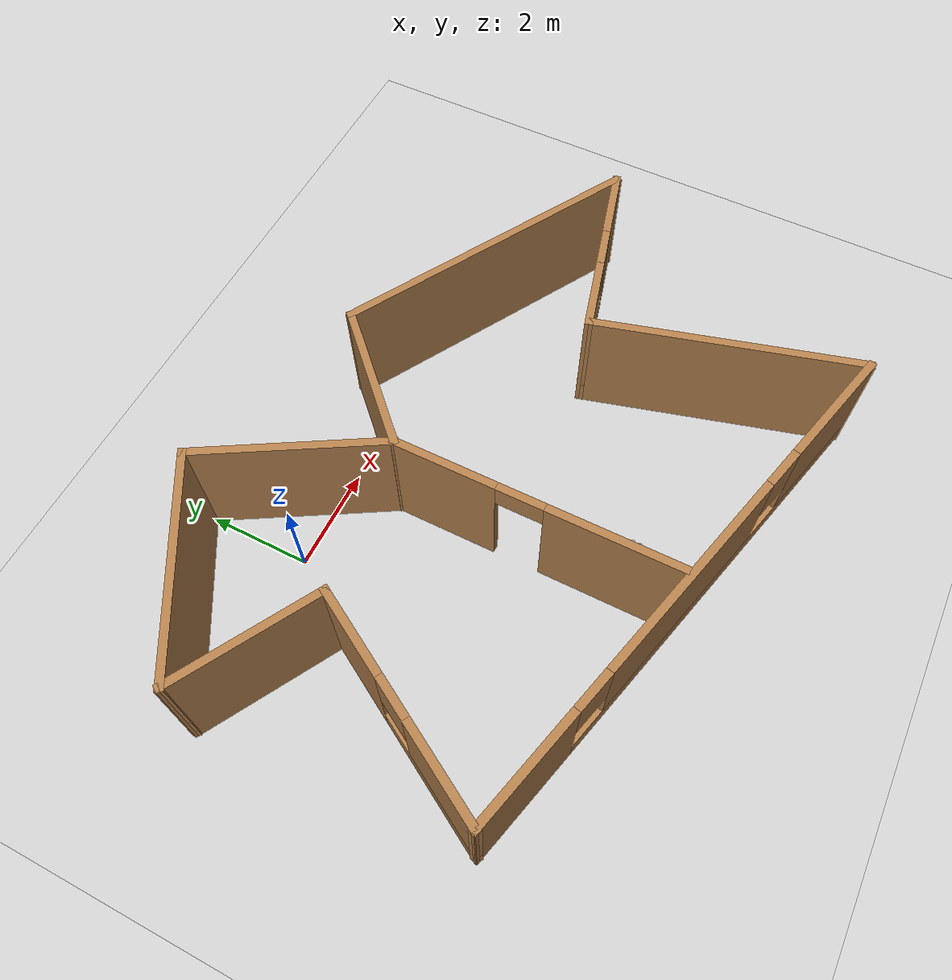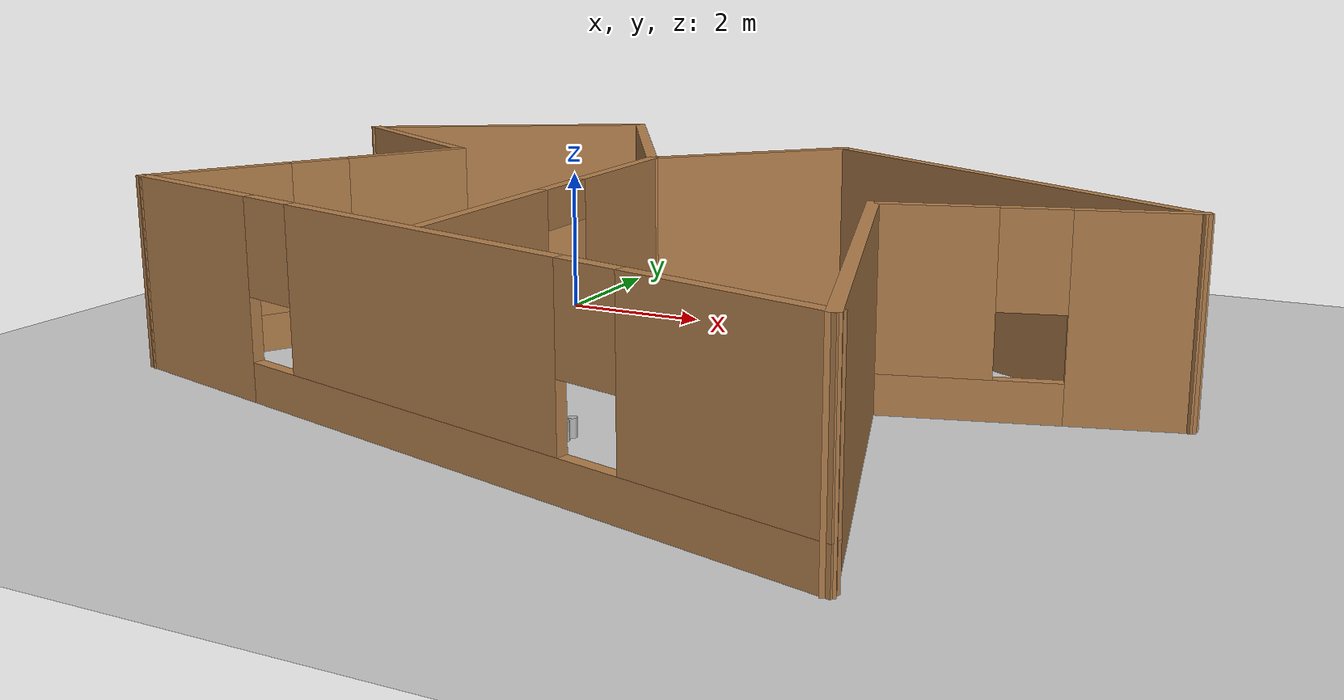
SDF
<sdf version="1.6">
 <world name="default">
  <light name="sun" type="directional">
   <pose>0 0 10 0 -0 0</pose>
   <diffuse>0.8 0.8 0.8 1</diffuse>
   <specular>0.2 0.2 0.2 1</specular>
   <attenuation>
    <range>1000</range>
    <constant>0.9</constant>
    <linear>0.01</linear>
    <quadratic>0.001</quadratic>
   </attenuation>
   <direction>-0.5 0.1 -0.9</direction>
  </light>
  <model name="ground_plane">
   <static>1</static>
   <link name="link">
    <collision name="collision">
     <geometry><plane><normal>0 0 1</normal><size>100 100</size></plane></geometry>
     <surface>
      <contact><collide_bitmask>65535</collide_bitmask></contact>
      <friction><ode><mu>100</mu><mu2>50</mu2></ode></friction>
     </surface>
    </collision>
    <visual name="visual">
     <cast_shadows>0</cast_shadows>
     <geometry><plane><normal>0 0 1</normal><size>100 100</size></plane></geometry>
     <material>
      <script><uri>file://media/materials/scripts/gazebo.material</uri><name>Gazebo/Grey</name></script>
     </material>
    </visual>
   </link>
  </model>
  <gravity>0 0 -9.8</gravity>
  <magnetic_field>6e-06 2.3e-05 -4.2e-05</magnetic_field>
  <atmosphere type="adiabatic"/>
  <physics name="default_physics" default="0" type="ode">
   <max_step_size>0.001</max_step_size>
   <real_time_factor>1</real_time_factor>
   <real_time_update_rate>1000</real_time_update_rate>
  </physics>
  <scene><ambient>0.4 0.4 0.4 1</ambient><background>0.7 0.7 0.7 1</background><shadows>1</shadows></scene>
  <spherical_coordinates>
   <surface_model>EARTH_WGS84</surface_model>
   <latitude_deg>0</latitude_deg>
   <longitude_deg>0</longitude_deg>
   <elevation>0</elevation>
   <heading_deg>0</heading_deg>
  </spherical_coordinates>
  <model name="house3">
   <pose>2.80789 -2.95253 0 0 -0 0</pose>
   <link name="Wall_10">
    <collision name="Wall_10_Collision">
     <geometry><box><size>3 0.15 2.5</size></box></geometry>
     <pose>0 0 1.25 0 -0 0</pose>
    </collision>
    <visual name="Wall_10_Visual">
     <pose>0 0 1.25 0 -0 0</pose>
     <geometry><box><size>3 0.15 2.5</size></box></geometry>
     <material>
      <script><uri>file://media/materials/scripts/gazebo.material</uri><name>Gazebo/Wood</name></script>
      <ambient>1 1 1 1</ambient>
     </material>
     <meta><layer>0</layer></meta>
    </visual>
    <pose>-5.09027 2.22528 0 0 -0 2.61799</pose>
   </link>
   <link name="Wall_11">
    <collision name="Wall_11_Collision">
     <geometry><box><size>4.25 0.15 2.5</size></box></geometry>
     <pose>0 0 1.25 0 -0 0</pose>
    </collision>
    <visual name="Wall_11_Visual">
     <pose>0 0 1.25 0 -0 0</pose>
     <geometry><box><size>4.25 0.15 2.5</size></box></geometry>
     <material>
      <script><uri>file://media/materials/scripts/gazebo.material</uri><name>Gazebo/Wood</name></script>
      <ambient>1 1 1 1</ambient>
     </material>
     <meta><layer>0</layer></meta>
    </visual>
    <pose>-4.549 3.96278 0 0 -0 0.523599</pose>
   </link>
   <link name="Wall_12">
    <collision name="Wall_12_Collision">
     <geometry><box><size>3.75 0.15 2.5</size></box></geometry>
     <pose>0 0 1.25 0 -0 0</pose>
    </collision>
    <visual name="Wall_12_Visual">
     <pose>0 0 1.25 0 -0 0</pose>
     <geometry><box><size>3.75 0.15 2.5</size></box></geometry>
     <material>
      <script><uri>file://media/materials/scripts/gazebo.material</uri><name>Gazebo/Wood</name></script>
      <ambient>1 1 1 1</ambient>
     </material>
     <meta><layer>0</layer></meta>
    </visual>
    <pose>-1.87365 3.42894 0 0 0 -1.0472</pose>
   </link>
   <link name="Wall_13">
    <collision name="Wall_13_Collision">
     <geometry><box><size>3 0.15 2.5</size></box></geometry>
     <pose>0 0 1.25 0 -0 0</pose>
    </collision>
    <visual name="Wall_13_Visual">
     <pose>0 0 1.25 0 -0 0</pose>
     <geometry><box><size>3 0.15 2.5</size></box></geometry>
     <material>
      <script><uri>file://media/materials/scripts/gazebo.material</uri><name>Gazebo/Wood</name></script>
      <ambient>1 1 1 1</ambient>
     </material>
     <meta><layer>0</layer></meta>
    </visual>
    <pose>0.033975 2.87772 0 0 -0 0.785398</pose>
   </link>
   <link name="Wall_14">
    <collision name="Wall_14_Collision">
     <geometry><box><size>6.25 0.15 2.5</size></box></geometry>
     <pose>0 0 1.25 0 -0 0</pose>
    </collision>
    <visual name="Wall_14_Visual">
     <pose>0 0 1.25 0 -0 0</pose>
     <geometry><box><size>6.25 0.15 2.5</size></box></geometry>
     <material>
      <script><uri>file://media/materials/scripts/gazebo.material</uri><name>Gazebo/Wood</name></script>
      <ambient>1 1 1 1</ambient>
     </material>
     <meta><layer>0</layer></meta>
    </visual>
    <pose>3.68298 2.36035 0 0 0 -0.523599</pose>
   </link>
   <link name="Wall_15">
    <pose>4.58569 0.369473 0 0 0 -2.87979</pose>
    <visual name="Wall_15_Visual_0">
     <pose>-1.14339 0 1.25 0 -0 0</pose>
     <geometry><box><size>1.46321 0.15 2.5</size></box></geometry>
     <material>
      <script><uri>file://media/materials/scripts/gazebo.material</uri><name>Gazebo/Wood</name></script>
      <ambient>1 1 1 1</ambient>
     </material>
     <meta><layer>0</layer></meta>
    </visual>
    <collision name="Wall_15_Collision_0">
     <geometry><box><size>1.46321 0.15 2.5</size></box></geometry>
     <pose>-1.14339 0 1.25 0 -0 0</pose>
    </collision>
    <visual name="Wall_15_Visual_1">
     <pose>0.731605 0 0.25 0 -0 0</pose>
     <geometry><box><size>2.28679 0.15 0.5</size></box></geometry>
     <material>
      <script><uri>file://media/materials/scripts/gazebo.material</uri><name>Gazebo/Wood</name></script>
      <ambient>1 1 1 1</ambient>
     </material>
     <meta><layer>0</layer></meta>
    </visual>
    <collision name="Wall_15_Collision_1">
     <geometry><box><size>2.28679 0.15 0.5</size></box></geometry>
     <pose>0.731605 0 0.25 0 -0 0</pose>
    </collision>
    <visual name="Wall_15_Visual_2">
     <pose>1.1316 0 1.5 0 -0 0</pose>
     <geometry><box><size>1.48679 0.15 2</size></box></geometry>
     <material>
      <script><uri>file://media/materials/scripts/gazebo.material</uri><name>Gazebo/Wood</name></script>
      <ambient>1 1 1 1</ambient>
     </material>
     <meta><layer>0</layer></meta>
    </visual>
    <collision name="Wall_15_Collision_2">
     <geometry><box><size>1.48679 0.15 2</size></box></geometry>
     <pose>1.1316 0 1.5 0 -0 0</pose>
    </collision>
    <visual name="Wall_15_Visual_3">
     <pose>-0.01179 0 1.9 0 -0 0</pose>
     <geometry><box><size>0.8 0.15 1.2</size></box></geometry>
     <material>
      <script><uri>file://media/materials/scripts/gazebo.material</uri><name>Gazebo/Wood</name></script>
      <ambient>1 1 1 1</ambient>
     </material>
     <meta><layer>0</layer></meta>
    </visual>
    <collision name="Wall_15_Collision_3">
     <geometry><box><size>0.8 0.15 1.2</size></box></geometry>
     <pose>-0.01179 0 1.9 0 -0 0</pose>
    </collision>
   </link>
   <link name="Wall_16">
    <collision name="Wall_16_Collision">
     <geometry><box><size>5.23685 0.15 2.5</size></box></geometry>
     <pose>0 0 1.25 0 -0 0</pose>
    </collision>
    <visual name="Wall_16_Visual">
     <pose>0 0 1.25 0 -0 0</pose>
     <geometry><box><size>5.23685 0.15 2.5</size></box></geometry>
     <material>
      <script><uri>file://media/materials/scripts/gazebo.material</uri><name>Gazebo/Wood</name></script>
      <ambient>1 1 1 1</ambient>
     </material>
     <meta><layer>0</layer></meta>
    </visual>
    <pose>3.52733 -2.54716 0 0 0 -1.30002</pose>
   </link>
   <link name="Wall_18">
    <pose>-0.973652 -0.804907 0 0 0 -1.5708</pose>
    <visual name="Wall_18_Visual_0">
     <pose>-1.72994 0 1.25 0 -0 0</pose>
     <geometry><box><size>2.04013 0.15 2.5</size></box></geometry>
     <material>
      <script><uri>file://media/materials/scripts/gazebo.material</uri><name>Gazebo/Wood</name></script>
      <ambient>1 1 1 1</ambient>
     </material>
     <meta><layer>0</layer></meta>
    </visual>
    <collision name="Wall_18_Collision_0">
     <geometry><box><size>2.04013 0.15 2.5</size></box></geometry>
     <pose>-1.72994 0 1.25 0 -0 0</pose>
    </collision>
    <visual name="Wall_18_Visual_1">
     <pose>1.47006 0 1.25 0 -0 0</pose>
     <geometry><box><size>2.55987 0.15 2.5</size></box></geometry>
     <material>
      <script><uri>file://media/materials/scripts/gazebo.material</uri><name>Gazebo/Wood</name></script>
      <ambient>1 1 1 1</ambient>
     </material>
     <meta><layer>0</layer></meta>
    </visual>
    <collision name="Wall_18_Collision_1">
     <geometry><box><size>2.55987 0.15 2.5</size></box></geometry>
     <pose>1.47006 0 1.25 0 -0 0</pose>
    </collision>
    <visual name="Wall_18_Visual_2">
     <pose>-0.259873 0 2.25 0 -0 0</pose>
     <geometry><box><size>0.9 0.15 0.5</size></box></geometry>
     <material>
      <script><uri>file://media/materials/scripts/gazebo.material</uri><name>Gazebo/Wood</name></script>
      <ambient>1 1 1 1</ambient>
     </material>
     <meta><layer>0</layer></meta>
    </visual>
    <collision name="Wall_18_Collision_2">
     <geometry><box><size>0.9 0.15 0.5</size></box></geometry>
     <pose>-0.259873 0 2.25 0 -0 0</pose>
    </collision>
   </link>
   <link name="Wall_4">
    <pose>-4.94368 -0.370821 0 0 0 -2.0944</pose>
    <visual name="Wall_4_Visual_0">
     <pose>-1.38042 0 1.25 0 -0 0</pose>
     <geometry><box><size>1.73917 0.15 2.5</size></box></geometry>
     <material>
      <script><uri>file://media/materials/scripts/gazebo.material</uri><name>Gazebo/Wood</name></script>
      <ambient>1 1 1 1</ambient>
     </material>
     <meta><layer>0</layer></meta>
    </visual>
    <collision name="Wall_4_Collision_0">
     <geometry><box><size>1.73917 0.15 2.5</size></box></geometry>
     <pose>-1.38042 0 1.25 0 -0 0</pose>
    </collision>
    <visual name="Wall_4_Visual_1">
     <pose>0.869584 0 0.25 0 -0 0</pose>
     <geometry><box><size>2.76083 0.15 0.5</size></box></geometry>
     <material>
      <script><uri>file://media/materials/scripts/gazebo.material</uri><name>Gazebo/Wood</name></script>
      <ambient>1 1 1 1</ambient>
     </material>
     <meta><layer>0</layer></meta>
    </visual>
    <collision name="Wall_4_Collision_1">
     <geometry><box><size>2.76083 0.15 0.5</size></box></geometry>
     <pose>0.869584 0 0.25 0 -0 0</pose>
    </collision>
    <visual name="Wall_4_Visual_2">
     <pose>1.26958 0 1.5 0 -0 0</pose>
     <geometry><box><size>1.96083 0.15 2</size></box></geometry>
     <material>
      <script><uri>file://media/materials/scripts/gazebo.material</uri><name>Gazebo/Wood</name></script>
      <ambient>1 1 1 1</ambient>
     </material>
     <meta><layer>0</layer></meta>
    </visual>
    <collision name="Wall_4_Collision_2">
     <geometry><box><size>1.96083 0.15 2</size></box></geometry>
     <pose>1.26958 0 1.5 0 -0 0</pose>
    </collision>
    <visual name="Wall_4_Visual_3">
     <pose>-0.110832 0 1.9 0 -0 0</pose>
     <geometry><box><size>0.8 0.15 1.2</size></box></geometry>
     <material>
      <script><uri>file://media/materials/scripts/gazebo.material</uri><name>Gazebo/Wood</name></script>
      <ambient>1 1 1 1</ambient>
     </material>
     <meta><layer>0</layer></meta>
    </visual>
    <collision name="Wall_4_Collision_3">
     <geometry><box><size>0.8 0.15 1.2</size></box></geometry>
     <pose>-0.110832 0 1.9 0 -0 0</pose>
    </collision>
   </link>
   <link name="Wall_5">
    <pose>-0.911777 -3.62617 0 0 0 -0.261799</pose>
    <visual name="Wall_5_Visual_0">
     <pose>-4.19506 0 1.25 0 -0 0</pose>
     <geometry><box><size>2.35988 0.15 2.5</size></box></geometry>
     <material>
      <script><uri>file://media/materials/scripts/gazebo.material</uri><name>Gazebo/Wood</name></script>
      <ambient>1 1 1 1</ambient>
     </material>
     <meta><layer>0</layer></meta>
    </visual>
    <collision name="Wall_5_Collision_0">
     <geometry><box><size>2.35988 0.15 2.5</size></box></geometry>
     <pose>-4.19506 0 1.25 0 -0 0</pose>
    </collision>
    <visual name="Wall_5_Visual_1">
     <pose>1.17994 0 0.25 0 -0 0</pose>
     <geometry><box><size>8.39012 0.15 0.5</size></box></geometry>
     <material>
      <script><uri>file://media/materials/scripts/gazebo.material</uri><name>Gazebo/Wood</name></script>
      <ambient>1 1 1 1</ambient>
     </material>
     <meta><layer>0</layer></meta>
    </visual>
    <collision name="Wall_5_Collision_1">
     <geometry><box><size>8.39012 0.15 0.5</size></box></geometry>
     <pose>1.17994 0 0.25 0 -0 0</pose>
    </collision>
    <visual name="Wall_5_Visual_2">
     <pose>-0.054945 0 1.5 0 -0 0</pose>
     <geometry><box><size>4.32035 0.15 2</size></box></geometry>
     <material>
      <script><uri>file://media/materials/scripts/gazebo.material</uri><name>Gazebo/Wood</name></script>
      <ambient>1 1 1 1</ambient>
     </material>
     <meta><layer>0</layer></meta>
    </visual>
    <collision name="Wall_5_Collision_2">
     <geometry><box><size>4.32035 0.15 2</size></box></geometry>
     <pose>-0.054945 0 1.5 0 -0 0</pose>
    </collision>
    <visual name="Wall_5_Visual_3">
     <pose>4.14011 0 1.5 0 -0 0</pose>
     <geometry><box><size>2.46977 0.15 2</size></box></geometry>
     <material>
      <script><uri>file://media/materials/scripts/gazebo.material</uri><name>Gazebo/Wood</name></script>
      <ambient>1 1 1 1</ambient>
     </material>
     <meta><layer>0</layer></meta>
    </visual>
    <collision name="Wall_5_Collision_3">
     <geometry><box><size>2.46977 0.15 2</size></box></geometry>
     <pose>4.14011 0 1.5 0 -0 0</pose>
    </collision>
    <visual name="Wall_5_Visual_4">
     <pose>-2.61512 0 1.9 0 -0 0</pose>
     <geometry><box><size>0.8 0.15 1.2</size></box></geometry>
     <material>
      <script><uri>file://media/materials/scripts/gazebo.material</uri><name>Gazebo/Wood</name></script>
      <ambient>1 1 1 1</ambient>
     </material>
     <meta><layer>0</layer></meta>
    </visual>
    <collision name="Wall_5_Collision_4">
     <geometry><box><size>0.8 0.15 1.2</size></box></geometry>
     <pose>-2.61512 0 1.9 0 -0 0</pose>
    </collision>
    <visual name="Wall_5_Visual_5">
     <pose>2.50523 0 1.9 0 -0 0</pose>
     <geometry><box><size>0.8 0.15 1.2</size></box></geometry>
     <material>
      <script><uri>file://media/materials/scripts/gazebo.material</uri><name>Gazebo/Wood</name></script>
      <ambient>1 1 1 1</ambient>
     </material>
     <meta><layer>0</layer></meta>
    </visual>
    <collision name="Wall_5_Collision_5">
     <geometry><box><size>0.8 0.15 1.2</size></box></geometry>
     <pose>2.50523 0 1.9 0 -0 0</pose>
    </collision>
   </link>
   <static>1</static>
  </model>
  <model name="beer">
   <link name="link">
    <pose>0 0 0.115 0 -0 0</pose>
    <inertial>
     <mass>0.39</mass>
     <inertia><ixx>0.00058</ixx><ixy>0</ixy><ixz>0</ixz><iyy>0.00058</iyy><iyz>0</iyz><izz>0.00019</izz></inertia>
    </inertial>
    <collision name="collision">
     <geometry><cylinder><radius>0.055</radius><length>0.23</length></cylinder></geometry>
    </collision>
    <visual name="visual">
     <geometry><cylinder><radius>0.055</radius><length>0.23</length></cylinder></geometry>
     <material>
      <script>
       <uri>model://beer/materials/scripts</uri>
       <uri>model://beer/materials/textures</uri>
       <name>Beer/Diffuse</name>
      </script>
     </material>
    </visual>
   </link>
   <pose>2.97982 -5.45783 -2e-06 0 0 -2.5e-05</pose>
  </model>
  <model name="beer_0">
   <link name="link">
    <pose>0 0 0.115 0 -0 0</pose>
    <inertial>
     <mass>0.39</mass>
     <inertia><ixx>0.00058</ixx><ixy>0</ixy><ixz>0</ixz><iyy>0.00058</iyy><iyz>0</iyz><izz>0.00019</izz></inertia>
    </inertial>
    <collision name="collision">
     <geometry><cylinder><radius>0.055</radius><length>0.23</length></cylinder></geometry>
    </collision>
    <visual name="visual">
     <geometry><cylinder><radius>0.055</radius><length>0.23</length></cylinder></geometry>
     <material>
      <script>
       <uri>model://beer/materials/scripts</uri>
       <uri>model://beer/materials/textures</uri>
       <name>Beer/Diffuse</name>
      </script>
     </material>
    </visual>
   </link>
   <pose>2.87404 -5.33804 -7e-06 -1e-06 -0 -2.4e-05</pose>
  </model>
  <model name="beer_1">
   <link name="link">
    <pose>0 0 0.115 0 -0 0</pose>
    <inertial>
     <mass>0.39</mass>
     <inertia><ixx>0.00058</ixx><ixy>0</ixy><ixz>0</ixz><iyy>0.00058</iyy><iyz>0</iyz><izz>0.00019</izz></inertia>
    </inertial>
    <collision name="collision">
     <geometry><cylinder><radius>0.055</radius><length>0.23</length></cylinder></geometry>
    </collision>
    <visual name="visual">
     <geometry><cylinder><radius>0.055</radius><length>0.23</length></cylinder></geometry>
     <material>
      <script>
       <uri>model://beer/materials/scripts</uri>
       <uri>model://beer/materials/textures</uri>
       <name>Beer/Diffuse</name>
      </script>
     </material>
    </visual>
   </link>
   <pose>2.98947 -5.3011 -2e-06 0 0 -2.3e-05</pose>
  </model>
  <model name="bookshelf">
   <static>1</static>
   <link name="link">
    <inertial><mass>1</mass></inertial>
    <collision name="back">
     <pose>0 0.005 0.6 0 -0 0</pose>
     <geometry><box><size>0.9 0.01 1.2</size></box></geometry>
    </collision>
    <visual name="visual1">
     <pose>0 0.005 0.6 0 -0 0</pose>
     <geometry><box><size>0.9 0.01 1.2</size></box></geometry>
     <material>
      <script><uri>file://media/materials/scripts/gazebo.material</uri><name>Gazebo/Wood</name></script>
     </material>
    </visual>
    <collision name="left_side">
     <pose>0.45 -0.195 0.6 0 -0 0</pose>
     <geometry><box><size>0.02 0.4 1.2</size></box></geometry>
    </collision>
    <visual name="visual2">
     <pose>0.45 -0.195 0.6 0 -0 0</pose>
     <geometry><box><size>0.02 0.4 1.2</size></box></geometry>
     <material>
      <script><uri>file://media/materials/scripts/gazebo.material</uri><name>Gazebo/Wood</name></script>
     </material>
    </visual>
    <collision name="right_side">
     <pose>-0.45 -0.195 0.6 0 -0 0</pose>
     <geometry><box><size>0.02 0.4 1.2</size></box></geometry>
    </collision>
    <visual name="visual3">
     <pose>-0.45 -0.195 0.6 0 -0 0</pose>
     <geometry><box><size>0.02 0.4 1.2</size></box></geometry>
     <material>
      <script><uri>file://media/materials/scripts/gazebo.material</uri><name>Gazebo/Wood</name></script>
     </material>
    </visual>
    <collision name="bottom">
     <pose>0 -0.195 0.03 0 -0 0</pose>
     <geometry><box><size>0.88 0.4 0.06</size></box></geometry>
    </collision>
    <visual name="visual4">
     <pose>0 -0.195 0.03 0 -0 0</pose>
     <geometry><box><size>0.88 0.4 0.06</size></box></geometry>
     <material>
      <script><uri>file://media/materials/scripts/gazebo.material</uri><name>Gazebo/Wood</name></script>
     </material>
    </visual>
    <collision name="top">
     <pose>0 -0.195 1.19 0 -0 0</pose>
     <geometry><box><size>0.88 0.4 0.02</size></box></geometry>
    </collision>
    <visual name="visual5">
     <pose>0 -0.195 1.19 0 -0 0</pose>
     <geometry><box><size>0.88 0.4 0.02</size></box></geometry>
     <material>
      <script><uri>file://media/materials/scripts/gazebo.material</uri><name>Gazebo/Wood</name></script>
     </material>
    </visual>
    <collision name="low_shelf">
     <pose>0 -0.195 0.43 0 -0 0</pose>
     <geometry><box><size>0.88 0.4 0.02</size></box></geometry>
    </collision>
    <visual name="visual6">
     <pose>0 -0.195 0.43 0 -0 0</pose>
     <geometry><box><size>0.88 0.4 0.02</size></box></geometry>
     <material>
      <script><uri>file://media/materials/scripts/gazebo.material</uri><name>Gazebo/Wood</name></script>
     </material>
    </visual>
    <collision name="high_shelf">
     <pose>0 -0.195 0.8 0 -0 0</pose>
     <geometry><box><size>0.88 0.4 0.02</size></box></geometry>
    </collision>
    <visual name="visual7">
     <pose>0 -0.195 0.8 0 -0 0</pose>
     <geometry><box><size>0.88 0.4 0.02</size></box></geometry>
     <material>
      <script><uri>file://media/materials/scripts/gazebo.material</uri><name>Gazebo/Wood</name></script>
     </material>
    </visual>
   </link>
   <pose>2.09272 -5.84675 0 0 -0 1.41249</pose>
  </model>
 </world>
</sdf>
